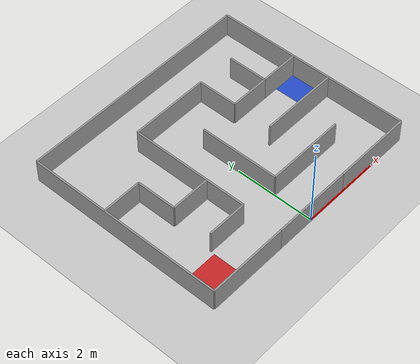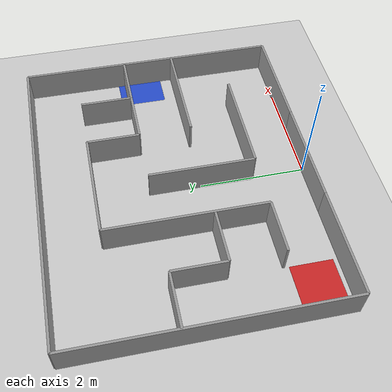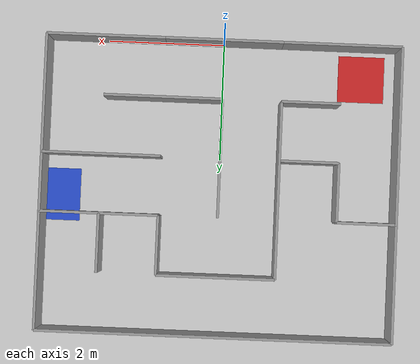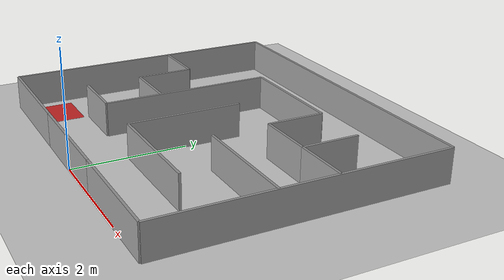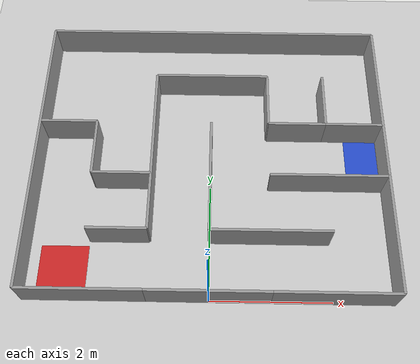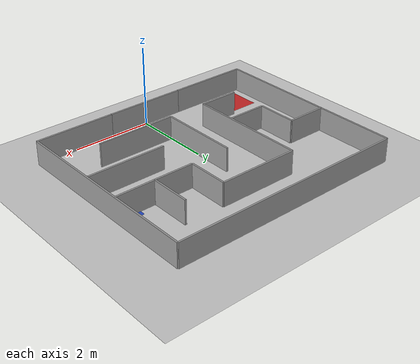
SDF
<?xml version="1.0" ?>
<sdf version="1.7">
  <world name="maze_duel">

    <physics type='ode'>
      <real_time_update_rate>1000</real_time_update_rate>
      <max_step_size>0.001</max_step_size>
      <real_time_factor>1</real_time_factor>
      <ode>
        <solver>
          <type>quick</type>
          <iters>150</iters>
          <precon_iters>0</precon_iters>
          <sor>1.4</sor>
          <use_dynamic_moi_rescaling>1</use_dynamic_moi_rescaling>
        </solver>
        <constraints>
          <cfm>1e-05</cfm>
          <erp>0.2</erp>
          <!-- Было 2000: ODE выталкивал проникающие контакты почти любой
               скоростью, колёса получали импульсные толчки, и акселерометр
               IMU шумел на +-1.6 м/с2 у стоящего робота. -->
          <contact_max_correcting_vel>100</contact_max_correcting_vel>
          <contact_surface_layer>0.001</contact_surface_layer>
        </constraints>
      </ode>
    </physics>

    <gravity>0 0 -9.8</gravity>
    <magnetic_field>6e-06 2.3e-05 -4.2e-05</magnetic_field>
    <atmosphere type='adiabatic' />
    <scene>
      <ambient>0.4 0.4 0.4 1</ambient>
      <background>0.7 0.7 0.7 1</background>
      <shadows>1</shadows>
    </scene>

    <light name='sun' type='directional'>
      <cast_shadows>1</cast_shadows>
      <pose>0 0 10 0 -0 0</pose>
      <diffuse>0.8 0.8 0.8 1</diffuse>
      <specular>0.2 0.2 0.2 1</specular>
      <attenuation>
        <range>1000</range>
        <constant>0.9</constant>
        <linear>0.01</linear>
        <quadratic>0.001</quadratic>
      </attenuation>
      <direction>-0.5 0.1 -0.9</direction>
      <spot>
        <inner_angle>0</inner_angle>
        <outer_angle>0</outer_angle>
        <falloff>0</falloff>
      </spot>
    </light>

    <model name='ground_plane'>
      <static>1</static>
      <link name='link'>
        <collision name='collision'>
          <geometry>
            <plane>
              <normal>0 0 1</normal>
              <size>100 100</size>
            </plane>
          </geometry>
          <surface>
            <friction>
              <ode>
                <mu>100</mu>
                <mu2>50</mu2>
              </ode>
              <torsional>
                <ode/>
              </torsional>
            </friction>
            <contact>
              <ode/>
            </contact>
            <bounce/>
          </surface>
          <max_contacts>10</max_contacts>
        </collision>
        <visual name='visual'>
          <cast_shadows>0</cast_shadows>
          <geometry>
            <plane>
              <normal>0 0 1</normal>
              <size>100 100</size>
            </plane>
          </geometry>
          <material>
            <script>
              <uri>file://media/materials/scripts/gazebo.material</uri>
              <name>Gazebo/Grey</name>
            </script>
          </material>
        </visual>
        <self_collide>0</self_collide>
        <enable_wind>0</enable_wind>
        <kinematic>0</kinematic>
      </link>
    </model>

    <model name='maze_duel_built'>
      <static>1</static>
      <link name="Wall_Stage_1">
        <collision name="Wall_Stage_1_Collision">
          <geometry><box><size>1 0.045 0.6</size></box></geometry>
          <pose>0 0 0.3 0 -0 0</pose>
          <max_contacts>10</max_contacts>
          <surface>
            <contact><ode /></contact>
            <bounce />
            <friction><torsional><ode /></torsional><ode /></friction>
          </surface>
        </collision>
        <visual name="Wall_Stage_1_Visual">
          <pose>0 0 0.3 0 -0 0</pose>
          <geometry><box><size>1 0.045 0.6</size></box></geometry>
          <material>
            <script>
              <uri>file://media/materials/scripts/gazebo.material</uri>
              <name>Gazebo/Grey</name>
            </script>
            <ambient>1 1 1 1</ambient>
          </material>
        </visual>
        <pose>1.5 3 0 0 0 0</pose>
        <self_collide>0</self_collide>
        <enable_wind>0</enable_wind>
        <kinematic>0</kinematic>
      </link>
      <link name="Wall_0">
        <collision name="Wall_0_Collision">
          <geometry><box><size>2 0.045 0.6</size></box></geometry>
          <pose>0 0 0.3 0 -0 0</pose>
          <max_contacts>10</max_contacts>
          <surface>
            <contact><ode /></contact>
            <bounce />
            <friction><torsional><ode /></torsional><ode /></friction>
          </surface>
        </collision>
        <visual name="Wall_0_Visual">
          <pose>0 0 0.3 0 -0 0</pose>
          <geometry><box><size>2 0.045 0.6</size></box></geometry>
          <material>
            <script>
              <uri>file://media/materials/scripts/gazebo.material</uri>
              <name>Gazebo/Grey</name>
            </script>
            <ambient>1 1 1 1</ambient>
          </material>
        </visual>
        <pose>2 0 0 0 0 0</pose>
        <self_collide>0</self_collide>
        <enable_wind>0</enable_wind>
        <kinematic>0</kinematic>
      </link>
      <link name="Wall_1">
        <collision name="Wall_1_Collision">
          <geometry><box><size>5 0.045 0.6</size></box></geometry>
          <pose>0 0 0.3 0 -0 0</pose>
          <max_contacts>10</max_contacts>
          <surface>
            <contact><ode /></contact>
            <bounce />
            <friction><torsional><ode /></torsional><ode /></friction>
          </surface>
        </collision>
        <visual name="Wall_1_Visual">
          <pose>0 0 0.3 0 -0 0</pose>
          <geometry><box><size>5 0.045 0.6</size></box></geometry>
          <material>
            <script>
              <uri>file://media/materials/scripts/gazebo.material</uri>
              <name>Gazebo/Grey</name>
            </script>
            <ambient>1 1 1 1</ambient>
          </material>
        </visual>
        <pose>3 2.5 0 0 0 1.57</pose>
        <self_collide>0</self_collide>
        <enable_wind>0</enable_wind>
        <kinematic>0</kinematic>
      </link>
      <link name="Wall_2">
        <collision name="Wall_2_Collision">
          <geometry><box><size>2 0.045 0.6</size></box></geometry>
          <pose>0 0 0.3 0 -0 0</pose>
          <max_contacts>10</max_contacts>
          <surface>
            <contact><ode /></contact>
            <bounce />
            <friction><torsional><ode /></torsional><ode /></friction>
          </surface>
        </collision>
        <visual name="Wall_2_Visual">
          <pose>0 0 0.3 0 -0 0</pose>
          <geometry><box><size>2 0.045 0.6</size></box></geometry>
          <material>
            <script>
              <uri>file://media/materials/scripts/gazebo.material</uri>
              <name>Gazebo/Grey</name>
            </script>
            <ambient>1 1 1 1</ambient>
          </material>
        </visual>
        <pose>1 1 0 0 0 0</pose>
        <self_collide>0</self_collide>
        <enable_wind>0</enable_wind>
        <kinematic>0</kinematic>
      </link>
      <link name="Wall_3">
        <collision name="Wall_3_Collision">
          <geometry><box><size>2 0.045 0.6</size></box></geometry>
          <pose>0 0 0.3 0 -0 0</pose>
          <max_contacts>10</max_contacts>
          <surface>
            <contact><ode /></contact>
            <bounce />
            <friction><torsional><ode /></torsional><ode /></friction>
          </surface>
        </collision>
        <visual name="Wall_3_Visual">
          <pose>0 0 0.3 0 -0 0</pose>
          <geometry><box><size>2 0.045 0.6</size></box></geometry>
          <material>
            <script>
              <uri>file://media/materials/scripts/gazebo.material</uri>
              <name>Gazebo/Grey</name>
            </script>
            <ambient>1 1 1 1</ambient>
          </material>
        </visual>
        <pose>0 2 0 0 0 1.57</pose>
        <self_collide>0</self_collide>
        <enable_wind>0</enable_wind>
        <kinematic>0</kinematic>
      </link>
      <link name="Wall_4">
        <collision name="Wall_4_Collision">
          <geometry><box><size>2 0.045 0.6</size></box></geometry>
          <pose>0 0 0.3 0 -0 0</pose>
          <max_contacts>10</max_contacts>
          <surface>
            <contact><ode /></contact>
            <bounce />
            <friction><torsional><ode /></torsional><ode /></friction>
          </surface>
        </collision>
        <visual name="Wall_4_Visual">
          <pose>0 0 0.3 0 -0 0</pose>
          <geometry><box><size>2 0.045 0.6</size></box></geometry>
          <material>
            <script>
              <uri>file://media/materials/scripts/gazebo.material</uri>
              <name>Gazebo/Grey</name>
            </script>
            <ambient>1 1 1 1</ambient>
          </material>
        </visual>
        <pose>2 2 0 0 0 0</pose>
        <self_collide>0</self_collide>
        <enable_wind>0</enable_wind>
        <kinematic>0</kinematic>
      </link>
      <link name="Wall_10">
        <collision name="Wall_10_Collision">
          <geometry><box><size>5 0.045 0.6</size></box></geometry>
          <pose>0 0 0.3 0 -0 0</pose>
          <max_contacts>10</max_contacts>
          <surface>
            <contact><ode /></contact>
            <bounce />
            <friction><torsional><ode /></torsional><ode /></friction>
          </surface>
        </collision>
        <visual name="Wall_10_Visual">
          <pose>0 0 0.3 0 -0 0</pose>
          <geometry><box><size>5 0.045 0.6</size></box></geometry>
          <material>
            <script>
              <uri>file://media/materials/scripts/gazebo.material</uri>
              <name>Gazebo/Grey</name>
            </script>
            <ambient>1 1 1 1</ambient>
          </material>
        </visual>
        <pose>-3 2.5 0 0 0 1.57</pose>
        <self_collide>0</self_collide>
        <enable_wind>0</enable_wind>
        <kinematic>0</kinematic>
      </link>
      <link name="Wall_12">
        <collision name="Wall_12_Collision">
          <geometry><box><size>3 0.045 0.6</size></box></geometry>
          <pose>0 0 0.3 0 -0 0</pose>
          <max_contacts>10</max_contacts>
          <surface>
            <contact><ode /></contact>
            <bounce />
            <friction><torsional><ode /></torsional><ode /></friction>
          </surface>
        </collision>
        <visual name="Wall_12_Visual">
          <pose>0 0 0.3 0 -0 0</pose>
          <geometry><box><size>3 0.045 0.6</size></box></geometry>
          <material>
            <script>
              <uri>file://media/materials/scripts/gazebo.material</uri>
              <name>Gazebo/Grey</name>
            </script>
            <ambient>1 1 1 1</ambient>
          </material>
        </visual>
        <pose>-1 2.5 0 0 0 1.57</pose>
        <self_collide>0</self_collide>
        <enable_wind>0</enable_wind>
        <kinematic>0</kinematic>
      </link>
      <link name="Wall_13">
        <collision name="Wall_13_Collision">
          <geometry><box><size>1 0.045 0.6</size></box></geometry>
          <pose>0 0 0.3 0 -0 0</pose>
          <max_contacts>10</max_contacts>
          <surface>
            <contact><ode /></contact>
            <bounce />
            <friction><torsional><ode /></torsional><ode /></friction>
          </surface>
        </collision>
        <visual name="Wall_13_Visual">
          <pose>0 0 0.3 0 -0 0</pose>
          <geometry><box><size>1 0.045 0.6</size></box></geometry>
          <material>
            <script>
              <uri>file://media/materials/scripts/gazebo.material</uri>
              <name>Gazebo/Grey</name>
            </script>
            <ambient>1 1 1 1</ambient>
          </material>
        </visual>
        <pose>-1.5 2 0 0 0 0</pose>
        <self_collide>0</self_collide>
        <enable_wind>0</enable_wind>
        <kinematic>0</kinematic>
      </link>
      <link name="Wall_11">
        <collision name="Wall_11_Collision">
          <geometry><box><size>1 0.045 0.6</size></box></geometry>
          <pose>0 0 0.3 0 -0 0</pose>
          <max_contacts>10</max_contacts>
          <surface>
            <contact><ode /></contact>
            <bounce />
            <friction><torsional><ode /></torsional><ode /></friction>
          </surface>
        </collision>
        <visual name="Wall_11_Visual">
          <pose>0 0 0.3 0 -0 0</pose>
          <geometry><box><size>1 0.045 0.6</size></box></geometry>
          <material>
            <script>
              <uri>file://media/materials/scripts/gazebo.material</uri>
              <name>Gazebo/Grey</name>
            </script>
            <ambient>1 1 1 1</ambient>
          </material>
        </visual>
        <pose>-1.5 1 0 0 0 0</pose>
        <self_collide>0</self_collide>
        <enable_wind>0</enable_wind>
        <kinematic>0</kinematic>
      </link>
      <link name="Wall_14">
        <collision name="Wall_14_Collision">
          <geometry><box><size>1 0.045 0.6</size></box></geometry>
          <pose>0 0 0.3 0 -0 0</pose>
          <max_contacts>10</max_contacts>
          <surface>
            <contact><ode /></contact>
            <bounce />
            <friction><torsional><ode /></torsional><ode /></friction>
          </surface>
        </collision>
        <visual name="Wall_14_Visual">
          <pose>0 0 0.3 0 -0 0</pose>
          <geometry><box><size>1 0.045 0.6</size></box></geometry>
          <material>
            <script>
              <uri>file://media/materials/scripts/gazebo.material</uri>
              <name>Gazebo/Grey</name>
            </script>
            <ambient>1 1 1 1</ambient>
          </material>
        </visual>
        <pose>-2 2.5 0 0 0 1.57</pose>
        <self_collide>0</self_collide>
        <enable_wind>0</enable_wind>
        <kinematic>0</kinematic>
      </link>
      <link name="Wall_15">
        <collision name="Wall_15_Collision">
          <geometry><box><size>1 0.045 0.6</size></box></geometry>
          <pose>0 0 0.3 0 -0 0</pose>
          <max_contacts>10</max_contacts>
          <surface>
            <contact><ode /></contact>
            <bounce />
            <friction><torsional><ode /></torsional><ode /></friction>
          </surface>
        </collision>
        <visual name="Wall_15_Visual">
          <pose>0 0 0.3 0 -0 0</pose>
          <geometry><box><size>1 0.045 0.6</size></box></geometry>
          <material>
            <script>
              <uri>file://media/materials/scripts/gazebo.material</uri>
              <name>Gazebo/Grey</name>
            </script>
            <ambient>1 1 1 1</ambient>
          </material>
        </visual>
        <pose>-2.5 3 0 0 0 0</pose>
        <self_collide>0</self_collide>
        <enable_wind>0</enable_wind>
        <kinematic>0</kinematic>
      </link>
      <link name="Wall_16">
        <collision name="Wall_16_Collision">
          <geometry><box><size>6 0.045 0.6</size></box></geometry>
          <pose>0 0 0.3 0 -0 0</pose>
          <max_contacts>10</max_contacts>
          <surface>
            <contact><ode /></contact>
            <bounce />
            <friction><torsional><ode /></torsional><ode /></friction>
          </surface>
        </collision>
        <visual name="Wall_16_Visual">
          <pose>0 0 0.3 0 -0 0</pose>
          <geometry><box><size>6 0.045 0.6</size></box></geometry>
          <material>
            <script>
              <uri>file://media/materials/scripts/gazebo.material</uri>
              <name>Gazebo/Grey</name>
            </script>
            <ambient>1 1 1 1</ambient>
          </material>
        </visual>
        <pose>0 5 0 0 0 0</pose>
        <self_collide>0</self_collide>
        <enable_wind>0</enable_wind>
        <kinematic>0</kinematic>
      </link>
      <link name="Wall_5">
        <collision name="Wall_5_Collision">
          <geometry><box><size>1 0.045 0.6</size></box></geometry>
          <pose>0 0 0.3 0 -0 0</pose>
          <max_contacts>10</max_contacts>
          <surface>
            <contact><ode /></contact>
            <bounce />
            <friction><torsional><ode /></torsional><ode /></friction>
          </surface>
        </collision>
        <visual name="Wall_5_Visual">
          <pose>0 0 0.3 0 -0 0</pose>
          <geometry><box><size>1 0.045 0.6</size></box></geometry>
          <material>
            <script>
              <uri>file://media/materials/scripts/gazebo.material</uri>
              <name>Gazebo/Grey</name>
            </script>
            <ambient>1 1 1 1</ambient>
          </material>
        </visual>
        <pose>2.5 3 0 0 0 0</pose>
        <self_collide>0</self_collide>
        <enable_wind>0</enable_wind>
        <kinematic>0</kinematic>
      </link>
      <link name="Wall_6">
        <collision name="Wall_6_Collision">
          <geometry><box><size>1 0.045 0.6</size></box></geometry>
          <pose>0 0 0.3 0 -0 0</pose>
          <max_contacts>10</max_contacts>
          <surface>
            <contact><ode /></contact>
            <bounce />
            <friction><torsional><ode /></torsional><ode /></friction>
          </surface>
        </collision>
        <visual name="Wall_6_Visual">
          <pose>0 0 0.3 0 -0 0</pose>
          <geometry><box><size>1 0.045 0.6</size></box></geometry>
          <material>
            <script>
              <uri>file://media/materials/scripts/gazebo.material</uri>
              <name>Gazebo/Grey</name>
            </script>
            <ambient>1 1 1 1</ambient>
          </material>
        </visual>
        <pose>2 3.5 0 0 0 1.57</pose>
        <self_collide>0</self_collide>
        <enable_wind>0</enable_wind>
        <kinematic>0</kinematic>
      </link>
      <link name="Wall_7">
        <collision name="Wall_7_Collision">
          <geometry><box><size>1 0.045 0.6</size></box></geometry>
          <pose>0 0 0.3 0 -0 0</pose>
          <max_contacts>10</max_contacts>
          <surface>
            <contact><ode /></contact>
            <bounce />
            <friction><torsional><ode /></torsional><ode /></friction>
          </surface>
        </collision>
        <visual name="Wall_7_Visual">
          <pose>0 0 0.3 0 -0 0</pose>
          <geometry><box><size>1 0.045 0.6</size></box></geometry>
          <material>
            <script>
              <uri>file://media/materials/scripts/gazebo.material</uri>
              <name>Gazebo/Grey</name>
            </script>
            <ambient>1 1 1 1</ambient>
          </material>
        </visual>
        <pose>1 3.5 0 0 0 1.57</pose>
        <self_collide>0</self_collide>
        <enable_wind>0</enable_wind>
        <kinematic>0</kinematic>
      </link>
      <link name="Wall_8">
        <collision name="Wall_8_Collision">
          <geometry><box><size>2 0.045 0.6</size></box></geometry>
          <pose>0 0 0.3 0 -0 0</pose>
          <max_contacts>10</max_contacts>
          <surface>
            <contact><ode /></contact>
            <bounce />
            <friction><torsional><ode /></torsional><ode /></friction>
          </surface>
        </collision>
        <visual name="Wall_8_Visual">
          <pose>0 0 0.3 0 -0 0</pose>
          <geometry><box><size>2 0.045 0.6</size></box></geometry>
          <material>
            <script>
              <uri>file://media/materials/scripts/gazebo.material</uri>
              <name>Gazebo/Grey</name>
            </script>
            <ambient>1 1 1 1</ambient>
          </material>
        </visual>
        <pose>0 4 0 0 0 0</pose>
        <self_collide>0</self_collide>
        <enable_wind>0</enable_wind>
        <kinematic>0</kinematic>
      </link>
      <link name="Wall_9">
        <collision name="Wall_9_Collision">
          <geometry><box><size>2 0.045 0.6</size></box></geometry>
          <pose>0 0 0.3 0 -0 0</pose>
          <max_contacts>10</max_contacts>
          <surface>
            <contact><ode /></contact>
            <bounce />
            <friction><torsional><ode /></torsional><ode /></friction>
          </surface>
        </collision>
        <visual name="Wall_9_Visual">
          <pose>0 0 0.3 0 -0 0</pose>
          <geometry><box><size>2 0.045 0.6</size></box></geometry>
          <material>
            <script>
              <uri>file://media/materials/scripts/gazebo.material</uri>
              <name>Gazebo/Grey</name>
            </script>
            <ambient>1 1 1 1</ambient>
          </material>
        </visual>
        <pose>-2 0 0 0 0 0</pose>
        <self_collide>0</self_collide>
        <enable_wind>0</enable_wind>
        <kinematic>0</kinematic>
      </link>
      <link name="Wall_South_Gap">
        <collision name="Wall_South_Gap_Collision">
          <geometry><box><size>2.0 0.045 0.6</size></box></geometry>
          <pose>0 0 0.3 0 -0 0</pose>
          <max_contacts>10</max_contacts>
          <surface>
            <contact><ode /></contact>
            <bounce />
            <friction><torsional><ode /></torsional><ode /></friction>
          </surface>
        </collision>
        <visual name="Wall_South_Gap_Visual">
          <pose>0 0 0.3 0 -0 0</pose>
          <geometry><box><size>2.0 0.045 0.6</size></box></geometry>
          <material>
            <script>
              <uri>file://media/materials/scripts/gazebo.material</uri>
              <name>Gazebo/Grey</name>
            </script>
            <ambient>1 1 1 1</ambient>
          </material>
        </visual>
        <pose>0 0 0 0 0 0</pose>
        <self_collide>0</self_collide>
        <enable_wind>0</enable_wind>
        <kinematic>0</kinematic>
      </link>
      <link name="Pad_Red">
        <visual name="Pad_Red_Visual">
          <pose>0 0 0 0 -0 0</pose>
          <geometry><box><size>0.8 0.8 0.001</size></box></geometry>
          <material>
            <script>
              <uri>file://media/materials/scripts/gazebo.material</uri>
              <name>Gazebo/Red</name>
            </script>
            <ambient>1 1 1 1</ambient>
          </material>
        </visual>
        <pose>-2.4 0.5 0.001 0 -0 0</pose>
        <self_collide>0</self_collide>
        <enable_wind>0</enable_wind>
        <kinematic>0</kinematic>
      </link>
      <link name="Pad_Blue">
        <visual name="Pad_Blue_Visual">
          <pose>0 0 0 0 -0 0</pose>
          <geometry><box><size>0.6 0.9 0.001</size></box></geometry>
          <material>
            <script>
              <uri>file://media/materials/scripts/gazebo.material</uri>
              <name>Gazebo/Blue</name>
            </script>
            <ambient>1 1 1 1</ambient>
          </material>
        </visual>
        <pose>2.7 2.7 0.001 0 -0 0</pose>
        <self_collide>0</self_collide>
        <enable_wind>0</enable_wind>
        <kinematic>0</kinematic>
      </link>
      <pose>0 0 0 0 -0 0</pose>
    </model>
  </world>
</sdf>
